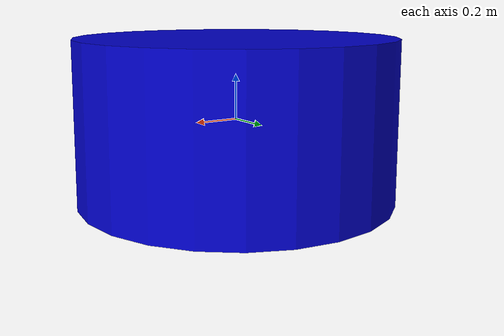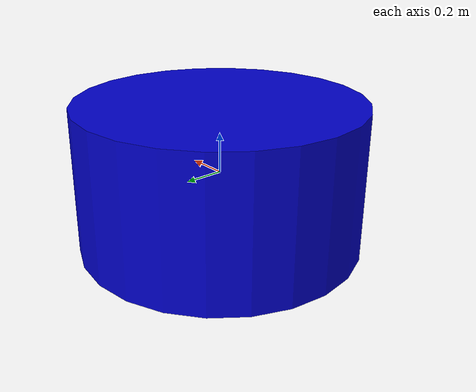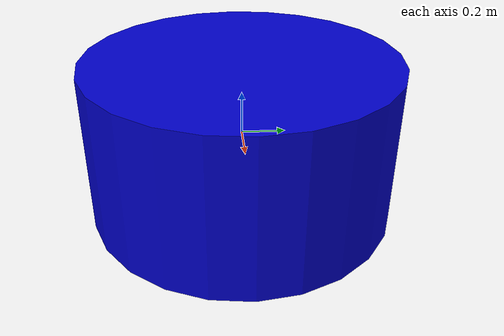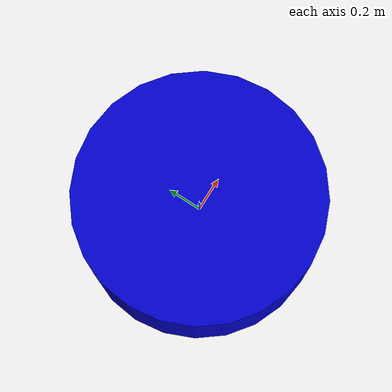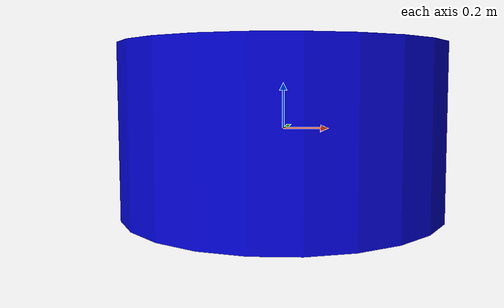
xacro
<?xml version="1.0"?>
<robot xmlns:xacro="http://www.ros.org/wiki/xacro" name="m600_pro">

    <xacro:include filename="$(find dji_m600_sim)/urdf/materials.xacro" />
    <xacro:include filename="$(find dji_m600_sim)/urdf/properties.xacro" />
    <xacro:include filename="$(find dji_m600_sim)/urdf/links.xacro" />
    <xacro:include filename="$(find dji_m600_sim)/urdf/gazebo.xacro" />

    <xacro:base_link/>

</robot>

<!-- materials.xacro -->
<robot name="m600_pro"
    xmlns:xacro="http://www.ros.org/wiki/xacro">

    <material name="black">
        <color rgba="0.0 0.0 0.0 1.0"/>
    </material>

    <material name="blue">
        <color rgba="0.0 0.0 0.8 1.0"/>
    </material>

    <material name="green">
        <color rgba="0.0 0.8 0.0 1.0"/>
    </material>

    <material name="grey">
        <color rgba="0.2 0.2 0.2 1.0"/>
    </material>

    <material name="orange">
        <color rgba="${255/255} ${108/255} ${10/255} 1.0"/>
    </material>

    <material name="brown">
        <color rgba="${222/255} ${207/255} ${195/255} 1.0"/>
    </material>

    <material name="red">
        <color rgba="1.0 0.0 0.0 1.0"/>
    </material>

    <material name="white">
        <color rgba="1.0 1.0 1.0 1.0"/>
    </material>

    <material name="acrylic">
        <color rgba="1.0 1.0 1.0 0.4"/>
    </material>

</robot>

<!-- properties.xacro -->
<robot xmlns:xacro="http://www.ros.org/wiki/xacro" name="m600_pro">

    <!-- X axis direction is forward, Y axis direction is left -->

    <!-- ______________Chassis parameters__________________________ -->
    <xacro:property name="chassisL" value="1.668" />
    <xacro:property name="chassisW" value="1.518" />
    <xacro:property name="chassisH" value="0.727" />

    <xacro:property name="chassisXoffset" value="0.0" />
    <xacro:property name="chassisYoffset" value="0.0" />
    <xacro:property name="chassisZoffset" value="0.0" />

    <xacro:property name="chassisMass" value="1"/>
    <xacro:property name="chassisIxx" value="0.4"/>
    <xacro:property name="chassisIxy" value="0.4"/>
    <xacro:property name="chassisIyy" value="0.4"/>
    <xacro:property name="chassisIxz" value="0.0"/>
    <xacro:property name="chassisIyz" value="0.0"/>
    <xacro:property name="chassisIzz" value="0.0"/>

    <xacro:property name="chassisScale" value="1"/>

    <xacro:property name="chassisMeshXoffset" value="0.000"/>
    <xacro:property name="chassisMeshYoffset" value="0.000"/>
    <xacro:property name="chassisMeshZoffset" value="-${chassisZoffset}"/>

</robot>

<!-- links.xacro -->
<robot xmlns:xacro="http://www.ros.org/wiki/xacro" name="m600_pro">

  <xacro:include filename="$(find dji_m600_sim)/urdf/inertial.xacro" />
  <xacro:include filename="$(find dji_m600_sim)/urdf/joints.xacro" />
  <xacro:include filename="$(find dji_m600_sim)/urdf/geometries.xacro" />
  <xacro:include filename="$(find dji_m600_sim)/urdf/properties.xacro" />
  <xacro:include filename="$(find dji_m600_sim)/urdf/gazebo.xacro" />

  <xacro:macro name="base_link">

   <link name="world"/>
   <link name="base_link"/>

    <joint name="vehicle_center_joint" type="fixed">
      <parent link="world"/>
      <child link="vehicle_center_link" />
      <origin xyz="${chassisXoffset} ${chassisYoffset} ${chassisZoffset}" rpy="0 0 0"/>
    </joint>

    <link name="vehicle_center_link">
      <visual>
        <origin rpy="0 0 0" xyz="${chassisMeshXoffset} ${chassisMeshYoffset} ${chassisMeshZoffset}" />
        <xacro:drone_cylinder />
        <material name="blue" />
      </visual>
      <collision>
        <xacro:box_geometry />
      </collision>
      <xacro:box_inertial/>
    </link>

    <joint name="vehicle_ground_joint" type="fixed">
      <parent link="vehicle_center_link"/>
      <child link="base_link" />
      <origin xyz="0 0 -${chassisZoffset}" rpy="0 0 0"/>
    </joint>

    <xacro:base_gazebo/>

  </xacro:macro>

</robot>

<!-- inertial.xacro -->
<robot xmlns:xacro="http://www.ros.org/wiki/xacro" name="m600_pro">

	<xacro:macro name="box_inertial">
		<inertial>
			<mass value="${chassisMass}"/>
			<inertia ixx="${chassisIxx}" ixy="${chassisIxy}" ixz="${chassisIxz}" iyy="${chassisIyy}" iyz="${chassisIyz}" izz="${chassisIzz}"/>
		</inertial>
	</xacro:macro>

	<xacro:macro name="default_inertial" params="mass">
		<inertial>
			<mass value="${mass}" />
			<inertia ixx="1.0" ixy="0.0" ixz="0.0" iyy="1.0" iyz="0.0" izz="1.0" />
		</inertial>
	</xacro:macro>

</robot>

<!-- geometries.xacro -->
<robot xmlns:xacro="http://www.ros.org/wiki/xacro" name="m600_pro">

    <xacro:macro name="chassis_mesh_geometry">
        <geometry>
            <mesh filename="file://$(find avc_urdf)/meshes/chassis2.DAE" scale="${chassisScale} ${chassisScale} ${chassisScale}"/>
         </geometry>
         <origin rpy="1.57 0 0" xyz="${chassisMeshXoffset} ${chassisMeshYoffset} ${chassisMeshZoffset}" />
	</xacro:macro>

	<xacro:macro name="box_geometry">
       <geometry>
            <box size = "${chassisL} ${chassisW} ${chassisH} "/>
        </geometry>
	</xacro:macro>

    <xacro:macro name="drone_cylinder">
        <geometry>
            <cylinder length="${chassisH}" radius="${chassisW/2-0.05}"/>
        </geometry>
    </xacro:macro>

    <xacro:macro name="lidar_geometry">
        <geometry>
            <cylinder length="${lidarThick}" radius="${lidarRadius}"/>
        </geometry>
        <origin rpy="0 0 0" xyz="0 0 0"/>
    </xacro:macro>

</robot>
